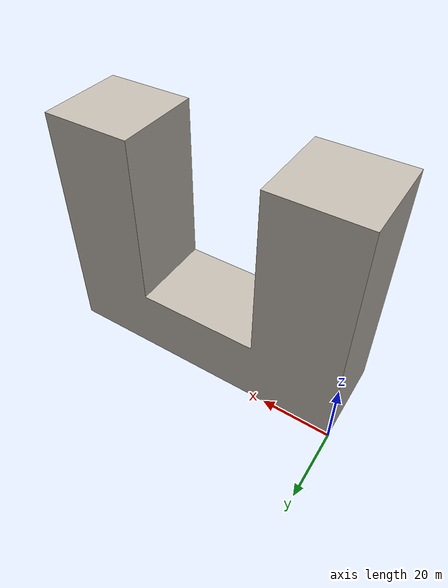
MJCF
<mujoco model="bread">
  <asset>
    <mesh file="meshes/peg_square.stl" name="peg_square_mesh" scale="1.0 1.0 1.0"/>
    <texture file="../textures/brass-ambra.png" type="cube" name="brass-metal"/>
    <material name="bmetal"  reflectance="1.0" shininess="1.0" specular="1.0" texrepeat="1 1" texture="brass-metal" texuniform="true"/>
  </asset>
  <worldbody>
    <body>
      <body name="object">
        <geom quat="0.707107 0.707107 0 0" mesh="peg_square_mesh" type="mesh" solimp="0.998 0.998 0.001" solref="0.001 1" density="100" friction="0.95 0.3 0.1"  group="0" condim="4" material='bmetal'/>
      </body>
    </body>
  </worldbody>
</mujoco>
